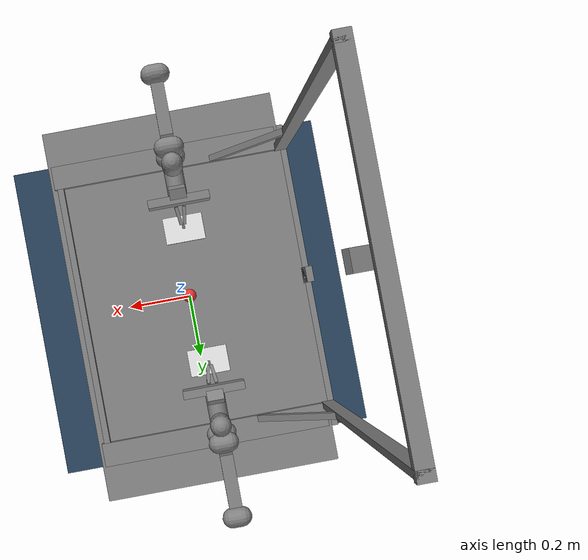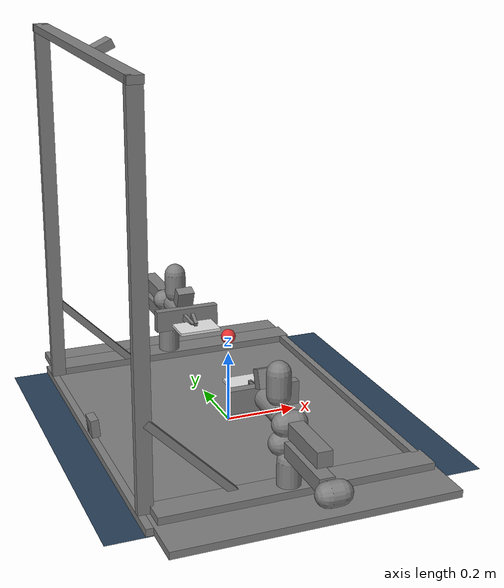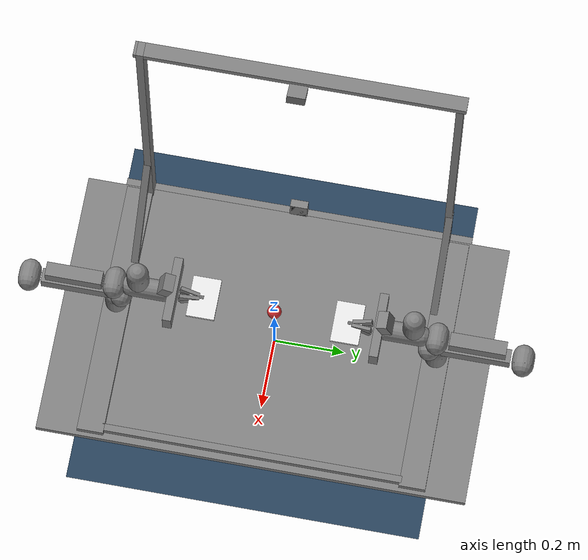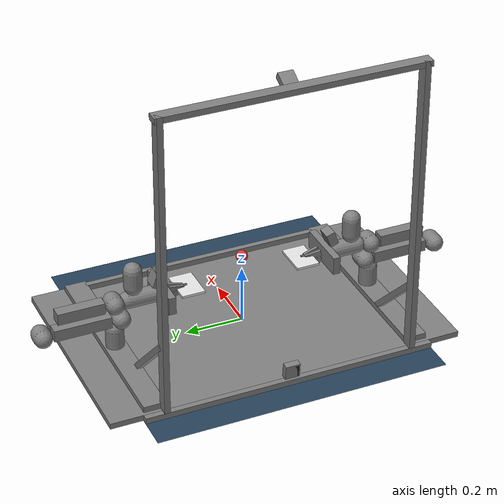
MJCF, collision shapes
<mujoco model="dynamic_handover">
  <!-- Combine Trossen bimanual arms with ping pong ball for continuous handover -->
  <include file="../stationary_ai/stationary_ai.xml"/>

  <!-- Ball physics: MJX does not support fluid drag with implicitfast, so no density/viscosity -->
  <option timestep="0.0005" integrator="implicitfast"/>

  <default>
    <pair solref="-100000 0" solreffriction="0 -10000"/>
  </default>

  <asset>
    <texture name="grid" type="2d" builtin="checker" rgb1=".1 .2 .3" rgb2=".2 .3 .4" width="300" height="300"/>
    <material name="grid" texture="grid" texrepeat="8 8" reflectance=".2"/>
    <material name="ball_mat" rgba="0.9 0.2 0.2 1"/>
  </asset>

  <worldbody>
    <!-- Ping pong ball from ping_pong.xml: free joint + sphere + ballast for accurate inertia -->
    <body name="ball" pos="0 0 0.25">
      <freejoint name="ball_joint"/>
      <geom name="ball" type="sphere" size="0.02" material="ball_mat" mass="0.0027" condim="3" friction="0.5 0.2 0.01"/>
      <body name="ballast">
        <joint type="ball" stiffness="0.1" damping="0.0001"/>
        <geom name="ballast" type="sphere" size="0.02" contype="0" conaffinity="0" mass="0.01" group="3"/>
      </body>
    </body>
    <!-- Floor plane for when ball drops -->
    <geom name="floor" size="0.5 0.5 0.01" type="plane" material="grid" pos="0 0 0"/>
  </worldbody>

  <contact>
    <pair geom1="tabletop" geom2="ball"/>
    <pair geom1="floor" geom2="ball"/>
    <pair geom1="left_paddle_geom" geom2="ball"/>
    <pair geom1="right_paddle_geom" geom2="ball"/>
  </contact>
</mujoco>

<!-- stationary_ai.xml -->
<mujoco model="stationary_ai">
  <compiler angle="radian" meshdir="../meshes" texturedir="../" autolimits="true"/>

  <option integrator="implicitfast"/>

  <default>
    <default class="visual">
      <geom type="mesh" group="2" contype="0" conaffinity="0" material="trossen_black"/>
    </default>
    <default class="collision">
      <geom type="capsule" group="3" mass="0" density="0"/>
    </default>
  </default>

  <asset>
    <material name="trossen_black" rgba="0.1 0.1 0.1 1"/>

    <texture name="maple_tabletop" type="2d" file="maple_tabletop.png"/>
    <material name="maple" texture="maple_tabletop"/>

    <mesh name="tabletop_link" file="tabletop_link.stl"/>
    <mesh name="frame_link" file="frame_link.stl"/>
    <mesh name="cam_high_mount_link" file="cam_high_mount_link.stl"/>
    <mesh name="cam_low_mount_link" file="cam_low_mount_link.stl"/>
    <mesh name="base_link" file="base_link.stl"/>
    <mesh name="link_1" file="link_1.stl"/>
    <mesh name="link_2" file="link_2.stl"/>
    <mesh name="link_3" file="link_3.stl"/>
    <mesh name="link_4" file="link_4.stl"/>
    <mesh name="link_5" file="link_5.stl"/>
    <mesh name="link_6" file="link_6.stl"/>
    <mesh name="carriage_right" file="carriage_right.stl"/>
    <mesh name="carriage_left" file="carriage_left.stl"/>
    <mesh name="camera_mount_d405" file="camera_mount_d405.stl"/>
    <mesh name="d405" file="d405.stl" scale="0.001 0.001 0.001"/>
    <mesh name="gripper_left" file="gripper_left.stl"/>
    <mesh name="gripper_right" file="gripper_right.stl"/>
  </asset>

  <worldbody>
    <body name="tabletop_link" pos="0 0 0">
      <inertial pos="-0.0053748816 -0.00042686842 0.014104691" quat="0.135549 0.672695 0.710793 0.154534" mass="15.2" diaginertia="0.301156 0.287827 0.165329"/>
      <geom class="visual" mesh="tabletop_link" material="maple"/>
      <geom name="tabletop" class="collision" type="box" size="0.38 0.61 0.01" pos="0 0 0.01"/>
      <geom class="visual" pos="0 0 0.02" mesh="frame_link"/>
      <geom class="collision" type="box" size="0.3685 0.0375 0.01" pos="0 0.457 0.03"/>
      <geom class="collision" type="box" size="0.3685 0.0375 0.01" pos="0 -0.457 0.03"/>
      <geom class="collision" type="box" size="0.01 0.425 0.01" pos="0.35 0 0.03"/>
      <geom class="collision" type="box" size="0.01 0.5 0.01" pos="-0.39 0 0.01"/>
      <geom class="collision" type="box" size="0.02 0.445 0.01" pos="-0.38 0 1.05"/>
      <geom class="collision" type="box" size="0.02 0.01 0.52" pos="-0.38 0.42774 0.54"/>
      <geom class="collision" type="box" size="0.02 0.01 0.52" pos="-0.38 -0.42774 0.54"/>
      <geom class="collision" type="box" size="0.01 0.01 0.16" pos="-0.261 0.43 0.1425" quat="0.9238795 0 -0.3826834 0"/>
      <geom class="collision" type="box" size="0.01 0.01 0.16" pos="-0.261 -0.43 0.1425" quat="0.9238795 0 -0.3826834 0"/>
      <geom class="visual" pos="-0.401982 -0.04 1.07985" quat="0 -0.707107 -0.707107 0" mesh="cam_high_mount_link"/>
      <geom class="collision" type="box" size="0.0115 0.025 0.025" pos="-0.328972 0 1.05484" quat="0.843391 0 0.5373 0"/>
      <geom class="visual" type="box" size="0.0115 0.021 0.021" pos="-0.327972 0 1.05484" quat="0.843391 0 0.5373 0"/>
      <geom class="visual" pos="-0.415 -0.024884 0.064061" quat="0 -0.707107 -0.707107 0" mesh="cam_low_mount_link"/>
      <geom class="collision" type="box" size="0.0115 0.025 0.025" pos="-0.388301 0 0.0513276" quat="0.998848 0 -0.0479781 0"/>
      <geom class="visual" type="box" size="0.0115 0.021 0.021" pos="-0.388301 0 0.0513276" quat="0.998848 0 -0.0479781 0"/>
      <site name="cam_high_color_frame" pos="-0.324675 0.009 1.047775" quat="0.8434 0 0.5373 0" size="0.005"/>
      <camera name="cam_high" pos="-0.324675 0.009 1.047775" quat="-0.6904 -0.153 0.153 0.6904" mode="fixed" fovy="65"/>
      <site name="cam_low_color_frame" pos="-0.378474 0.009 0.051132" quat="0.9988 0 -0.048 0" size="0.005"/>
      <camera name="cam_low" pos="-0.378474 0.009 0.051132" quat="-0.4754 -0.5234 0.5234 0.4754" mode="fixed" fovy="125"/>
      <body name="follower_left_base_link" pos="-0.019982 0.4575 0.039086" quat="0.707107 0 0 -0.707107" gravcomp="1">
        <inertial pos="-0.00014175 -5.228e-05 0.03175177" quat="0.503748 -0.507380 -0.494230 -0.494510" mass="0.45969858" diaginertia="0.000213926 0.000416701 0.000448963"/>
        <geom class="visual" mesh="base_link"/>
        <geom class="collision" type="capsule" size="0.031 0.0325" pos="0 0 0.0325" quat="1 0 0 0"/>
        <body name="follower_left_link_1" pos="0 0 0.05725" gravcomp="1">
          <inertial pos="-0.00011075 0.00171176 0.0204459" quat="0.313955 0.305238 -0.643575 0.627752" mass="0.152704" diaginertia="0.000203432 0.000173907 8.3521e-05"/>
          <joint name="follower_left_joint_0" pos="0 0 0" axis="0 0 1" range="-3.05433 3.05433" armature="0.032" frictionloss="0.1" actuatorgravcomp="true"/>
          <geom class="visual" mesh="link_1"/>
          <body name="follower_left_link_2" pos="0.02 0 0.04625" gravcomp="1">
            <inertial pos="-0.131215 -0.00292583 0.00021345" quat="-0.00123582 0.706546 -0.00109575 0.707665" mass="1.15316" diaginertia="0.0179449 0.0173612 0.00102628"/>
            <joint name="follower_left_joint_1" pos="0 0 0" axis="0 1 0" range="0 3.14159" armature="0.032" frictionloss="0.1" actuatorgravcomp="true"/>
            <geom class="visual" mesh="link_2"/>
            <geom class="collision" type="capsule" size="0.031 0.015" pos="0 0 0" quat="1 1 0 0"/>
            <geom class="collision" type="box" size="0.0975 0.02 0.02" pos="-0.131 0 0" quat="1 0 0 0"/>
            <body name="follower_left_link_3" pos="-0.264 0 0" gravcomp="1">
              <inertial pos="0.180836 -0.0009409 0.0555494" quat="0.0103901 0.669684 -0.0033175 0.742566" mass="0.686666" diaginertia="0.00566898 0.00547578 0.00059316"/>
              <joint name="follower_left_joint_2" pos="0 0 0" axis="0 -1 0" range="0 2.35619" armature="0.032" frictionloss="0.1" actuatorgravcomp="true"/>
              <geom class="visual" mesh="link_3"/>
              <geom class="collision" type="capsule" size="0.031 0.015" pos="0 0 0" quat="1 1 0 0"/>
              <geom class="collision" type="box" size="0.08 0.02 0.02" pos="0.13 0 0.06" quat="1 0 0 0"/>
              <body name="follower_left_link_4" pos="0.245 0 0.06" gravcomp="1">
                <inertial pos="0.0579784 0.00027145 0.0588445" quat="0.948688 0.0346237 0.307828 0.0635164" mass="0.457899" diaginertia="0.000670827 0.000661455 0.000288648"/>
                <joint name="follower_left_joint_3" pos="0 0 0" axis="0 -1 0" range="-1.5708 1.5708" armature="0.0018" frictionloss="0.1" actuatorgravcomp="true"/>
                <geom class="visual" mesh="link_4"/>
                <geom class="collision" type="capsule" size="0.031 0.015" pos="0 0 0" quat="1 1 0 0"/>
                <body name="follower_left_link_5" pos="0.06775 0 0.0455" gravcomp="1">
                  <inertial pos="0.00412447 -1.138e-05 -0.0428318" quat="0.496144 0.502128 0.503595 0.498098" mass="0.366939" diaginertia="0.000320622 0.00026751 0.000189108"/>
                  <joint name="follower_left_joint_4" pos="0 0 0" axis="0 0 -1" range="-1.5708 1.5708" armature="0.0018" frictionloss="0.1" actuatorgravcomp="true"/>
                  <geom class="visual" mesh="link_5"/>
                  <geom class="collision" type="capsule" size="0.031 0.028" pos="0 0 0.03" quat="1 0 0 0"/>
                  <body name="follower_left_link_6" pos="0.02895 0 -0.0455" gravcomp="1">
                    <inertial pos="0.046841 0.00145133 0.00895674" quat="0.275854 0.291255 -0.691957 0.600225" mass="0.671874" diaginertia="0.00118316 0.00110863 0.00078309"/>
                    <joint name="follower_left_joint_5" pos="0 0 0" axis="1 0 0" range="-3.14159 3.14159" armature="0.0018" frictionloss="0.1" actuatorgravcomp="true"/>
                    <geom class="visual" mesh="link_6"/>
                    <geom class="collision" type="capsule" size="0.029 0.05" pos="0 0 0" quat="1 0 1 0"/>
                    <geom class="collision" type="box" size="0.0125 0.094 0.031" pos="0.0685 0 0" quat="1 0 0 0"/>
                    <!-- End-effector site at gripper tip -->
                    <site name="follower_left_ee_site" pos="0.156 0 0" size="0.001"/>
                    <!-- Ping pong paddle at end effector -->
                    <body name="left_paddle" pos="0.156 0 0">
                      <geom name="left_paddle_geom" type="box" size="0.04 0.06 0.004" rgba="0.9 0.9 0.9 1" mass="0.05" condim="3" friction="0.9 0.5 0.01"/>
                    </body>
                    <geom class="visual" pos="0.012 0 0" quat="1 0 0 0" mesh="camera_mount_d405"/>
                    <geom class="collision" type="box" size="0.0155 0.025 0.025" pos="0.0513206 0 0.0569399" quat="0.984808 0 0.173648 0"/>
                    <geom class="visual" type="box" size="0.0115 0.021 0.021" pos="0.0513206 0 0.0569399" quat="0.984808 0 0.173648 0"/>
                    <site name="follower_left_camera_color_frame" pos="0.05864 0.009 0.05427" quat="0.9848078 0 0.1736482 0" size="0.005"/>
                    <camera name="cam_left_wrist" pos="0.05864 0.009 0.05427" quat="0.5793 0.4056 -0.4056 -0.5793" mode="fixed" fovy="87"/>
                    <body name="follower_left_carriage_right" pos="0.0865 -0.023 0" gravcomp="1">
                      <inertial pos="0.00169015 0.00592793 0.00201817" quat="-0.370973 0.740886 -0.0847721 0.553427" mass="0.081271" diaginertia="4.29565e-05 3.87081e-05 2.21528e-05"/>
                      <joint name="follower_left_right_carriage_joint" pos="0 0 0" axis="0 -1 0" type="slide" range="0 0.044" armature="0.1" frictionloss="0.1" actuatorgravcomp="true"/>
                      <geom class="visual" mesh="carriage_right"/>
                      <geom class="visual" mesh="gripper_right"/>
                      <geom name="follower_left_gripper_right_pad_upper" class="collision" type="box" size="0.0275 0.005 0.01" pos="0.0286 0.01436 0.0037" quat="0.99257 -0.00451 0.10246 0.06547"/>
                      <geom name="follower_left_gripper_right_pad_lower" class="collision" type="box" size="0.0275 0.005 0.01" pos="0.0285 0.01429 -0.00973" quat="0.98344 0.0133 -0.16893 0.06427"/>
                      <geom name="follower_left_gripper_right_tip" class="collision" type="box" size="0.00732 0.00214 0.00767" pos="0.0622 0.02083 -0.00105" quat="1 0 0 0"/>
                    </body>
                    <body name="follower_left_carriage_left" pos="0.0865 0.023 0" gravcomp="1">
                      <inertial pos="0.00169017 -0.00592796 -0.00365701" quat="-0.0382691 0.628022 -0.255101 0.734198" mass="0.081271" diaginertia="4.21112e-05 3.61943e-05 2.40003e-05"/>
                      <joint name="follower_left_left_carriage_joint" pos="0 0 0" axis="0 1 0" type="slide" range="0 0.044" armature="0.1" frictionloss="0.1" actuatorgravcomp="true"/>
                      <geom class="visual" mesh="carriage_left"/>
                      <geom class="visual" mesh="gripper_left"/>
                      <geom name="follower_left_gripper_left_pad_upper" class="collision" type="box" size="0.0275 0.005 0.01" pos="0.0286 -0.01436 0.0037" quat="0.99257 0.00451 0.10246 -0.06547"/>
                      <geom name="follower_left_gripper_left_pad_lower" class="collision" type="box" size="0.0275 0.005 0.01" pos="0.0285 -0.01429 -0.00973" quat="0.98344 -0.0133 -0.16893 -0.06427"/>
                      <geom name="follower_left_gripper_left_tip" class="collision" type="box" size="0.00732 0.00214 0.00767" pos="0.0622 -0.02083 -0.00105" quat="1 0 0 0"/>
                    </body>
                  </body>
                </body>
              </body>
            </body>
          </body>
        </body>
      </body>
      <body name="follower_right_base_link" pos="-0.019982 -0.4575 0.039086" quat="0.707107 0 0 0.707107" gravcomp="1">
        <inertial pos="-0.00014175 -5.228e-05 0.03175177" quat="0.503748 -0.507380 -0.494230 -0.494510" mass="0.45969858" diaginertia="0.000213926 0.000416701 0.000448963"/>
        <geom class="visual" mesh="base_link"/>
        <geom class="collision" type="capsule" size="0.031 0.0325" pos="0 0 0.0325" quat="1 0 0 0"/>
        <body name="follower_right_link_1" pos="0 0 0.05725" gravcomp="1">
          <inertial pos="-0.00011075 0.00171176 0.0204459" quat="0.313955 0.305238 -0.643575 0.627752" mass="0.152704" diaginertia="0.000203432 0.000173907 8.3521e-05"/>
          <joint name="follower_right_joint_0" pos="0 0 0" axis="0 0 1" range="-3.05433 3.05433" armature="0.032" frictionloss="0.1" actuatorgravcomp="true"/>
          <geom class="visual" mesh="link_1"/>
          <body name="follower_right_link_2" pos="0.02 0 0.04625" gravcomp="1">
            <inertial pos="-0.131215 -0.00292583 0.00021345" quat="-0.00123582 0.706546 -0.00109575 0.707665" mass="1.15316" diaginertia="0.0179449 0.0173612 0.00102628"/>
            <joint name="follower_right_joint_1" pos="0 0 0" axis="0 1 0" range="0 3.14159" armature="0.032" frictionloss="0.1" actuatorgravcomp="true"/>
            <geom class="visual" mesh="link_2"/>
            <geom class="collision" type="capsule" size="0.031 0.015" pos="0 0 0" quat="1 1 0 0"/>
            <geom class="collision" type="box" size="0.0975 0.02 0.02" pos="-0.131 0 0" quat="1 0 0 0"/>
            <body name="follower_right_link_3" pos="-0.264 0 0" gravcomp="1">
              <inertial pos="0.180836 -0.0009409 0.0555494" quat="0.0103901 0.669684 -0.0033175 0.742566" mass="0.686666" diaginertia="0.00566898 0.00547578 0.00059316"/>
              <joint name="follower_right_joint_2" pos="0 0 0" axis="0 -1 0" range="0 2.35619" armature="0.032" frictionloss="0.1" actuatorgravcomp="true"/>
              <geom class="visual" mesh="link_3"/>
              <geom class="collision" type="capsule" size="0.031 0.015" pos="0 0 0" quat="1 1 0 0"/>
              <geom class="collision" type="box" size="0.08 0.02 0.02" pos="0.13 0 0.06" quat="1 0 0 0"/>
              <body name="follower_right_link_4" pos="0.245 0 0.06" gravcomp="1">
                <inertial pos="0.0579784 0.00027145 0.0588445" quat="0.948688 0.0346237 0.307828 0.0635164" mass="0.457899" diaginertia="0.000670827 0.000661455 0.000288648"/>
                <joint name="follower_right_joint_3" pos="0 0 0" axis="0 -1 0" range="-1.5708 1.5708" armature="0.0018" frictionloss="0.1" actuatorgravcomp="true"/>
                <geom class="visual" mesh="link_4"/>
                <geom class="collision" type="capsule" size="0.031 0.015" pos="0 0 0" quat="1 1 0 0"/>
                <body name="follower_right_link_5" pos="0.06775 0 0.0455" gravcomp="1">
                  <inertial pos="0.00412447 -1.138e-05 -0.0428318" quat="0.496144 0.502128 0.503595 0.498098" mass="0.366939" diaginertia="0.000320622 0.00026751 0.000189108"/>
                  <joint name="follower_right_joint_4" pos="0 0 0" axis="0 0 -1" range="-1.5708 1.5708" armature="0.0018" frictionloss="0.1" actuatorgravcomp="true"/>
                  <geom class="visual" mesh="link_5"/>
                  <geom class="collision" type="capsule" size="0.031 0.028" pos="0 0 0.03" quat="1 0 0 0"/>
                  <body name="follower_right_link_6" pos="0.02895 0 -0.0455" gravcomp="1">
                    <inertial pos="0.046841 0.00145133 0.00895674" quat="0.275854 0.291255 -0.691957 0.600225" mass="0.671874" diaginertia="0.00118316 0.00110863 0.00078309"/>
                    <joint name="follower_right_joint_5" pos="0 0 0" axis="1 0 0" range="-3.14159 3.14159" armature="0.0018" frictionloss="0.1" actuatorgravcomp="true"/>
                    <geom class="visual" mesh="link_6"/>
                    <geom class="collision" type="capsule" size="0.029 0.05" pos="0 0 0" quat="1 0 1 0"/>
                    <geom class="collision" type="box" size="0.0125 0.094 0.031" pos="0.0685 0 0" quat="1 0 0 0"/>
                    <!-- End-effector site at gripper tip -->
                    <site name="follower_right_ee_site" pos="0.156 0 0" size="0.001"/>
                    <!-- Ping pong paddle at end effector -->
                    <body name="right_paddle" pos="0.156 0 0">
                      <geom name="right_paddle_geom" type="box" size="0.04 0.06 0.004" rgba="0.9 0.9 0.9 1" mass="0.05" condim="3" friction="0.9 0.5 0.01"/>
                    </body>
                    <geom class="visual" pos="0.012 0 0" quat="1 0 0 0" mesh="camera_mount_d405"/>
                    <geom class="collision" type="box" size="0.0155 0.025 0.025" pos="0.0513206 0 0.0569399" quat="0.984808 0 0.173648 0"/>
                    <geom class="visual" type="box" size="0.0115 0.021 0.021" pos="0.0513206 0 0.0569399" quat="0.984808 0 0.173648 0"/>
                    <site name="follower_right_camera_color_frame" pos="0.05864 0.009 0.05427" quat="0.9848078 0 0.1736482 0" size="0.005"/>
                    <camera name="cam_right_wrist" pos="0.05864 0.009 0.05427" quat="0.5793 0.4056 -0.4056 -0.5793" mode="fixed" fovy="87"/>
                    <body name="follower_right_carriage_right" pos="0.0865 -0.023 0" gravcomp="1">
                      <inertial pos="0.00169015 0.00592793 0.00201817" quat="-0.370973 0.740886 -0.0847721 0.553427" mass="0.081271" diaginertia="4.29565e-05 3.87081e-05 2.21528e-05"/>
                      <joint name="follower_right_right_carriage_joint" pos="0 0 0" axis="0 -1 0" type="slide" range="0 0.044" armature="0.1" frictionloss="0.1" actuatorgravcomp="true"/>
                      <geom class="visual" mesh="carriage_right"/>
                      <geom class="visual" mesh="gripper_right"/>
                      <geom name="follower_right_gripper_right_pad_upper" class="collision" type="box" size="0.0275 0.005 0.01" pos="0.0286 0.01436 0.0037" quat="0.99257 -0.00451 0.10246 0.06547"/>
                      <geom name="follower_right_gripper_right_pad_lower" class="collision" type="box" size="0.0275 0.005 0.01" pos="0.0285 0.01429 -0.00973" quat="0.98344 0.0133 -0.16893 0.06427"/>
                      <geom name="follower_right_gripper_right_tip" class="collision" type="box" size="0.00732 0.00214 0.00767" pos="0.0622 0.02083 -0.00105" quat="1 0 0 0"/>
                    </body>
                    <body name="follower_right_carriage_left" pos="0.0865 0.023 0" gravcomp="1">
                      <inertial pos="0.00169017 -0.00592796 -0.00365701" quat="-0.0382691 0.628022 -0.255101 0.734198" mass="0.081271" diaginertia="4.21112e-05 3.61943e-05 2.40003e-05"/>
                      <joint name="follower_right_left_carriage_joint" pos="0 0 0" axis="0 1 0" type="slide" range="0 0.044" armature="0.1" frictionloss="0.1" actuatorgravcomp="true"/>
                      <geom class="visual" mesh="carriage_left"/>
                      <geom class="visual" mesh="gripper_left"/>
                      <geom name="follower_right_gripper_left_pad_upper" class="collision" type="box" size="0.0275 0.005 0.01" pos="0.0286 -0.01436 0.0037" quat="0.99257 0.00451 0.10246 -0.06547"/>
                      <geom name="follower_right_gripper_left_pad_lower" class="collision" type="box" size="0.0275 0.005 0.01" pos="0.0285 -0.01429 -0.00973" quat="0.98344 -0.0133 -0.16893 -0.06427"/>
                      <geom name="follower_right_gripper_left_tip" class="collision" type="box" size="0.00732 0.00214 0.00767" pos="0.0622 -0.02083 -0.00105" quat="1 0 0 0"/>
                    </body>
                  </body>
                </body>
              </body>
            </body>
          </body>
        </body>
      </body>
    </body>
  </worldbody>

  <equality>
    <joint joint1="follower_left_right_carriage_joint" joint2="follower_left_left_carriage_joint" polycoef="0 1 0 0 0"/>
    <joint joint1="follower_right_right_carriage_joint" joint2="follower_right_left_carriage_joint" polycoef="0 1 0 0 0"/>
  </equality>

  <actuator>
    <position name="follower_left_joint_0" joint="follower_left_joint_0" kp="200" kv="10" ctrlrange="-3.05433 3.05433" forcerange="-27 27"/>
    <position name="follower_left_joint_1" joint="follower_left_joint_1" kp="200" kv="10" ctrlrange="0 3.14159" forcerange="-27 27"/>
    <position name="follower_left_joint_2" joint="follower_left_joint_2" kp="200" kv="10" ctrlrange="0 2.35619" forcerange="-27 27"/>
    <position name="follower_left_joint_3" joint="follower_left_joint_3" kp="100" kv="5" ctrlrange="-1.5708 1.5708" forcerange="-7 7"/>
    <position name="follower_left_joint_4" joint="follower_left_joint_4" kp="50" kv="5" ctrlrange="-1.5708 1.5708" forcerange="-7 7"/>
    <position name="follower_left_joint_5" joint="follower_left_joint_5" kp="50" kv="5" ctrlrange="-3.14159 3.14159" forcerange="-7 7"/>
    <position name="follower_left_gripper" joint="follower_left_left_carriage_joint" kp="1000" kv="50" ctrlrange="0 0.044" forcerange="-400 400"/>

    <position name="follower_right_joint_0" joint="follower_right_joint_0" kp="200" kv="10" ctrlrange="-3.05433 3.05433" forcerange="-27 27"/>
    <position name="follower_right_joint_1" joint="follower_right_joint_1" kp="200" kv="10" ctrlrange="0 3.14159" forcerange="-27 27"/>
    <position name="follower_right_joint_2" joint="follower_right_joint_2" kp="200" kv="10" ctrlrange="0 2.35619" forcerange="-27 27"/>
    <position name="follower_right_joint_3" joint="follower_right_joint_3" kp="100" kv="5" ctrlrange="-1.5708 1.5708" forcerange="-7 7"/>
    <position name="follower_right_joint_4" joint="follower_right_joint_4" kp="50" kv="5" ctrlrange="-1.5708 1.5708" forcerange="-7 7"/>
    <position name="follower_right_joint_5" joint="follower_right_joint_5" kp="50" kv="5" ctrlrange="-3.14159 3.14159" forcerange="-7 7"/>
    <position name="follower_right_gripper" joint="follower_right_left_carriage_joint" kp="1000" kv="50" ctrlrange="0 0.044" forcerange="-400 400"/>
  </actuator>

  <keyframe>
    <key name="home" qpos="0 0 0 0 0 0 0 0 0 0 0 0 0 0 0 0" ctrl="0 0 0 0 0 0 0 0 0 0 0 0 0 0"/>
  </keyframe>
</mujoco>
